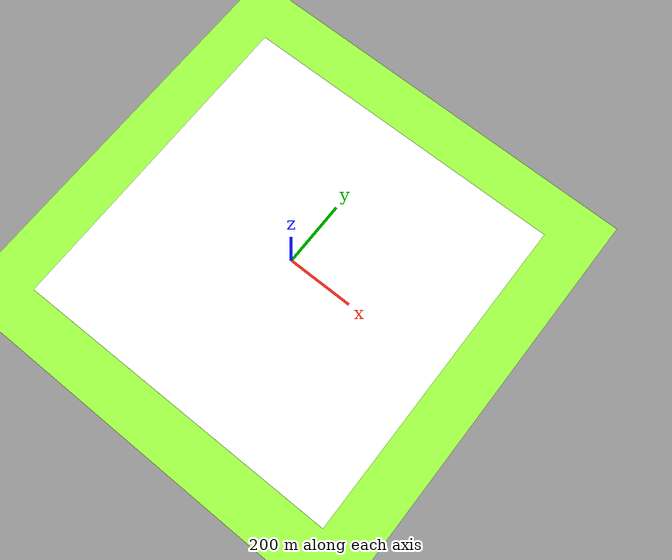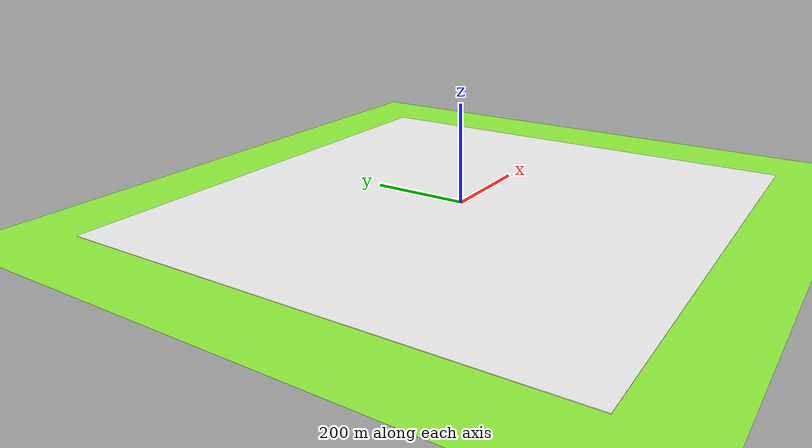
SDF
<?xml version="1.0" encoding="UTF-8"?>
<sdf version="1.9">
  <world name="default">
    <physics type="ode">
      <max_step_size>0.004</max_step_size>
      <real_time_factor>1.0</real_time_factor>
      <real_time_update_rate>250</real_time_update_rate>
    </physics>
    <gravity>0 0 -9.8</gravity>
    <magnetic_field>6e-06 2.3e-05 -4.2e-05</magnetic_field>
    <atmosphere type="adiabatic"/>
    <scene>
      <grid>false</grid>
      <ambient>0.4 0.4 0.4 1</ambient>
      <background>0.7 0.7 0.7 1</background>
      <shadows>true</shadows>
    </scene>

    <model name="ground_plane">
      <static>true</static>
      <link name="link">
        <collision name="collision">
          <geometry>
            <plane>
              <normal>0 0 1</normal>
              <size>1 1</size>
            </plane>
          </geometry>
          <surface>
            <friction>
              <ode/>
            </friction>
            <bounce/>
            <contact/>
          </surface>
        </collision>
        <visual name="visual">
          <geometry>
            <plane>
              <normal>0 0 1</normal>
              <size>500 500</size>
            </plane>
          </geometry>
          <material>
            <diffuse>0.6 1.0 0.25 0.5</diffuse>
            <specular>0 0 0 0</specular>
            <emissive>0 0 0 0</emissive>
          </material>
        </visual>
        <pose>0 0 0 0 -0 0</pose>
        <inertial>
          <pose>0 0 0 0 -0 0</pose>
          <mass>1</mass>
          <inertia>
            <ixx>1</ixx>
            <ixy>0</ixy>
            <ixz>0</ixz>
            <iyy>1</iyy>
            <iyz>0</iyz>
            <izz>1</izz>
          </inertia>
        </inertial>
        <enable_wind>false</enable_wind>
      </link>
      <pose>0 0 0 0 -0 0</pose>
      <self_collide>false</self_collide>
    </model>

    <include>
      <uri>https://fuel.ignitionrobotics.org/1.0/hexarotor/models/grasspatch</uri>
      <name>grasspatch</name>
      <pose>2.71574 -2.80395 0 0 -0 0.006057</pose>
    </include>

    <light name="sunUTC" type="directional">
      <pose>0 0 500 0 -0 0</pose>
      <cast_shadows>true</cast_shadows>
      <intensity>1</intensity>
      <direction>0.001 0.625 -0.78</direction>
      <diffuse>0.904 0.904 0.904 1</diffuse>
      <specular>0.271 0.271 0.271 1</specular>
      <attenuation>
        <range>2000</range>
        <linear>0</linear>
        <constant>1</constant>
        <quadratic>0</quadratic>
      </attenuation>
      <spot>
        <inner_angle>0</inner_angle>
        <outer_angle>0</outer_angle>
        <falloff>0</falloff>
      </spot>
    </light>

    <spherical_coordinates>
      <surface_model>EARTH_WGS84</surface_model>
      <world_frame_orientation>ENU</world_frame_orientation>
      <latitude_deg>41.870028</latitude_deg>
      <longitude_deg>-87.650351</longitude_deg>
      <elevation>0</elevation>
    </spherical_coordinates>
  </world>
</sdf>

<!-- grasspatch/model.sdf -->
<sdf version='1.4'>
  <model name='grasspatch'>
    <static>true</static>
    <link name='link'>
      <collision name='collision'>
        <pose>0 0 0 0 0 0</pose>
        <geometry>
          <plane>
            <normal>0 0 1</normal>
            <size>1000 1000</size>
          </plane>
        </geometry>
        <surface>
          <friction>
            <ode>
              <mu>0.5</mu>
              <mu2>.5</mu2>
            </ode>
          </friction>
        </surface>
      </collision>

      <visual name='visual_s10'>
        <pose>0 0 0 0 0 0</pose>
        <cast_shadows>false</cast_shadows>
        <geometry>
          <plane>
            <normal>0 0 1</normal>
            <size>1000 1000</size>
          </plane>
        </geometry>
          <material>
         <diffuse>1.0 1.0 1.0</diffuse>
          <specular>1.0 1.0 1.0</specular>
		  <pbr>
			<metal>
			   <albedo_map>materials/textures/grass_dry.png</albedo_map>
			   <normal_map>materials/textures/grass_dry.png</normal_map>
			</metal>
		  </pbr>
		</material>
      </visual>

    </link>
  </model>
</sdf>
